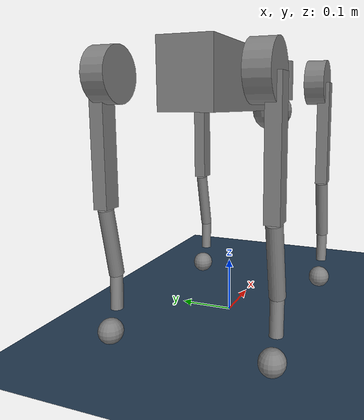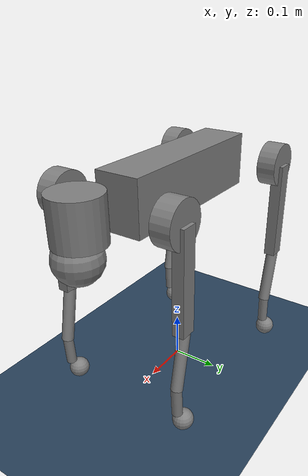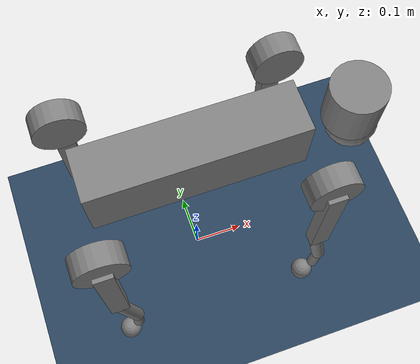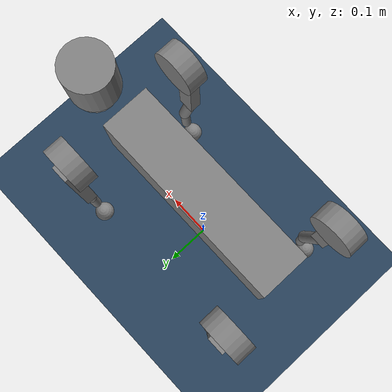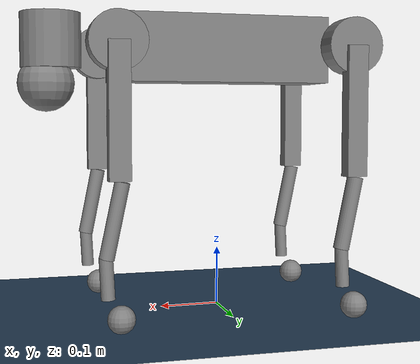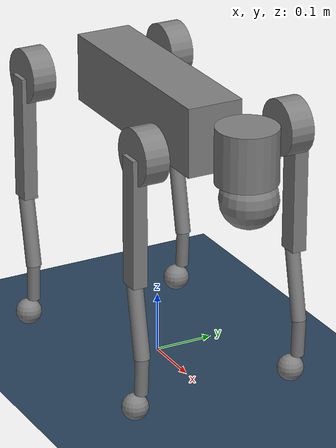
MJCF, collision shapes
<mujoco model="go2-mjx scene">
  <include file="go2_mjx_contact.xml"/>

  <statistic center="0 0 0.1" extent="0.8"/>

  <visual>
    <headlight diffuse="0.6 0.6 0.6" ambient="0.3 0.3 0.3" specular="0 0 0"/>
    <rgba haze="0.15 0.25 0.35 1"/>
    <global azimuth="120" elevation="-20"/>
  </visual>

  <asset>
    <texture type="skybox" builtin="gradient" rgb1="0.3 0.5 0.7" rgb2="0 0 0" width="512" height="3072"/>
    <texture type="2d" name="groundplane" builtin="checker" mark="edge" rgb1="0.2 0.3 0.4" rgb2="0.1 0.2 0.3"
      markrgb="0.8 0.8 0.8" width="300" height="300"/>
    <material name="groundplane" texture="groundplane" texuniform="true" texrepeat="5 5" reflectance="0.2"/>
  </asset>

  <worldbody>
    <light pos="0 0 1.5" dir="0 0 -1" directional="true"/>
    <camera name="default" pos="0.846 -1.465 0.916" xyaxes="0.866 0.500 0.000 -0.171 0.296 0.940"/>
    <geom name="floor" size="0 0 0.05" type="plane" material="groundplane"/>
  </worldbody>

  <keyframe>
    <key name="home" qpos="0 0 0.278 1 0 0 0 0.0 0.9 -1.8 0.0 0.9 -1.8 0.0 0.9 -1.8 0.0 0.9 -1.8"
      ctrl="0 0.9 -1.8 0 0.9 -1.8 0 0.9 -1.8 0 0.9 -1.8"/>
      <key name="crouch" qpos="-0.0384565 4.95902e-07 0.198396 0.998989 2.08821e-09 -0.0449472 -6.06184e-07 -0.0503107 0.956793 -2.15261 0.0503112 0.956793 -2.15261 -0.120289 0.915977 -2.27063 0.120289 0.915977 -2.27063"
      ctrl="-0.0503107 0.956793 -2.15261 0.0503112 0.956793 -2.15261 -0.120289 0.915977 -2.27063 0.120289 0.915977 -2.27063"/>
      <key name="prone_1" qpos="-0.0502458 3.66769e-06 0.0771103 0.998648 -1.29872e-06 -0.0519801 -1.94645e-05 -0.1339 1.22421 -2.7233 0.133924 1.22419 -2.72329 -0.481994 1.67458 -2.7239 0.48206 1.67406 -2.7239"
      ctrl="-0.13 1.2 -2.7 0.13 1.2 -2.7 -0.48 1.67 -2.7 0.48 1.67 -2.7"/>
      <key name="prone_2" qpos="-0.0369411 0.000157361 0.0765187 0.998689 -0.000882732 -0.0511797 0.000144047 -0.320642 1.17327 -2.61361 0.329096 1.1684 -2.61363 -0.483148 1.23678 -2.71366 0.493161 1.23329 -2.70996"
      ctrl="-0.352275 1.18554 -2.80738 0.360892 1.1806 -2.80281 -0.381197 1.16812 -2.79123 0.391054 1.1622 -2.78576"/>
      <key name="prone_3" qpos="0 0 0.12 0.999797 2.50649e-05 0.0201565 0.000500596 -0.0679284 1.03058 -2.67981 0.0687334 1.03041 -2.67934 -0.0129924 0.969629 -2.62512 0.012856 0.969593 -2.62509"
      ctrl="-0.0679284 1.03058 -2.67981 0.0687334 1.03041 -2.67934 -0.0129924 0.969629 -2.62512 0.012856 0.969593 -2.62509"/>
      <key name="tall_1" qpos="0 0 0.32 0.99996 1.51937e-08 0.00890876 -5.40594e-07 -0.0964217 0.671547 -1.57524 0.0964222 0.671547 -1.57524 -0.078734 0.939397 -1.50725 0.0787333 0.939397 -1.50725"
      ctrl="0.0 0.707 -1.4 0.0 0.707 -1.4 0.0 0.9 -1.4 0.0 0.9 -1.4"/>
      <key name="tall_2" qpos="0 0 0.31 1 0 0 0 0 0.82 -1.63 0 0.82 -1.63 0 0.82 -1.63 0 0.82 -1.63"
      ctrl="0 0.82 -1.63 0 0.82 -1.63 0 0.82 -1.63 0 0.82 -1.63"/>
  </keyframe>

</mujoco>

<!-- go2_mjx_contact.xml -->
<mujoco model="go2">
  <compiler angle="radian" meshdir="assets" autolimits="true"/>

  <option iterations="1" ls_iterations="5" timestep="0.004" integrator="Euler">
    <flag eulerdamp="disable"/>
  </option>

  <default>
    <default class="go2">
      <geom friction="0.6" contype="0" conaffinity="0" type="mesh"/>
      <joint axis="0 1 0" damping="0.5" armature="0.01"/>
      <position forcerange="-23.7 23.7" kp="35.0"/>
      <default class="go2/abduction">
        <joint axis="1 0 0" range="-1.0472 1.0472" frictionloss="0.35"/>
        <position ctrlrange="-1.0472 1.0472"/>
      </default>
      <default class="go2/hip">
        <default class="go2/front_hip">
          <joint range="-1.5708 3.4907" frictionloss="0.35"/>
          <position ctrlrange="-1.5708 3.4907"/>
        </default>
        <default class="go2/back_hip">
          <joint range="-0.5236 4.5379" frictionloss="0.35"/>
          <position ctrlrange="-0.5236 4.5379"/>
        </default>
      </default>
      <default class="go2/knee">
        <joint range="-2.7227 -0.83776" frictionloss="1.35"/>
        <position forcerange="-45.43 45.43" ctrlrange="-2.7227 -0.83776"/>
      </default>
      <default class="go2/foot">
        <site pos="-0.002 0 -0.213"/>
      </default>
      <default class="go2/collision">
        <geom group="3" contype="0" conaffinity="1"/>
        <default class="go2/collision/foot">
          <geom type="sphere" size="0.022" pos="-0.002 0 -0.213" solimp="0.9 .95 0.022" condim="6" friction="0.8 0.02 0.01"/>
        </default>
      </default>
    </default>
  </default>

  <asset>
    <material name="metal" rgba=".9 .95 .95 1"/>
    <material name="black" rgba="0 0 0 1"/>
    <material name="white" rgba="1 1 1 1"/>
    <material name="gray" rgba="0.671705 0.692426 0.774270 1"/>
    <mesh file="base_0.obj"/>
    <mesh file="base_1.obj"/>
    <mesh file="base_2.obj"/>
    <mesh file="base_3.obj"/>
    <mesh file="base_4.obj"/>
    <mesh file="hip_0.obj"/>
    <mesh file="hip_1.obj"/>
    <mesh file="thigh_0.obj"/>
    <mesh file="thigh_1.obj"/>
    <mesh file="thigh_mirror_0.obj"/>
    <mesh file="thigh_mirror_1.obj"/>
    <mesh file="calf_0.obj"/>
    <mesh file="calf_1.obj"/>
    <mesh file="calf_mirror_0.obj"/>
    <mesh file="calf_mirror_1.obj"/>
    <mesh file="foot.obj"/>
  </asset>

   <worldbody>
        <body name="base_link" pos="0 0 0.445" childclass="go2">
            <inertial pos="0.021112 0 -0.005366" quat="-0.000543471 0.713435 -0.00173769 0.700719"
                mass="6.921"
                diaginertia="0.107027 0.0980771 0.0244531"/>
            <freejoint/>
            <geom mesh="base_0" material="black" class="go2"/>
            <geom mesh="base_1" material="black" class="go2"/>
            <geom mesh="base_2" material="black" class="go2"/>
            <geom mesh="base_3" material="white" class="go2"/>
            <geom mesh="base_4" material="gray" class="go2"/>
            <!-- Collision: -->
            <geom size="0.1881 0.04675 0.057" type="box" class="go2/collision"/>
            <geom size="0.05 0.045" pos="0.285 0 0.01" type="cylinder" class="go2/collision"/>
            <geom size="0.047" pos="0.293 0 -0.06" type="sphere" class="go2/collision"/>
            <site name="imu" pos="-0.02557 0 0.04232"/>
            <body name="front_right_hip" pos="0.1934 -0.0465 0">
                <inertial pos="-0.0054 -0.00194 -0.000105" quat="0.498237 0.505462 0.499245 0.497014"
                  mass="0.678"
                  diaginertia="0.00088403 0.000596003 0.000479967"/>
                <joint name="front_right_hip_joint" class="go2/abduction"/>
                <geom mesh="hip_0" material="metal" class="go2" quat="4.63268e-05 1 0 0"/>
                <geom mesh="hip_1" material="gray" class="go2" quat="4.63268e-05 1 0 0"/>
                <!-- Collision: -->
                <geom size="0.046 0.02" pos="0 -0.08 0" quat="0.707107 0.707107 0 0" type="cylinder"
                  class="go2/collision"/>
                <body name="front_right_thigh" pos="0 -0.0955 0">
                    <inertial pos="-0.00374 0.0223 -0.0327" quat="0.551623 -0.0200632 0.0847635 0.829533"
                        mass="1.152"
                        diaginertia="0.00594973 0.00584149 0.000878787"/>
                    <joint name="front_right_thigh_joint" class="go2/front_hip"/>
                    <geom mesh="thigh_mirror_0" material="metal" class="go2"/>
                    <geom mesh="thigh_mirror_1" material="gray" class="go2"/>
                    <!-- Collision: -->
                    <geom size="0.1065 0.01225 0.017" pos="0 0 -0.1065" quat="0.707107 0 0.707107 0"
                      type="box" class="go2/collision"/>
                    <body name="front_right_calf" pos="0 0 -0.213">
                        <inertial pos="0.00629595 0.000622121 -0.141417"
                          quat="0.703508 -0.00450087 0.00154099 0.710672"
                          mass="0.241352" diaginertia="0.0014901 0.00146356 5.31397e-05"/>
                        <joint name="front_right_calf_joint" class="go2/knee"/>
                        <geom mesh="calf_mirror_0" material="gray" class="go2"/>
                        <geom mesh="calf_mirror_1" material="black" class="go2"/>
                        <!-- Collision: -->
                        <geom size="0.013 0.06" pos="0.01 0 -0.06" quat="0.995004 0 -0.0998334 0"
                          type="cylinder" class="go2/collision"/>
                        <geom size="0.011 0.0325" pos="0.02 0 -0.148" quat="0.999688 0 0.0249974 0"
                          type="cylinder" class="go2/collision"/>
                        <geom pos="0 0 -0.213" mesh="foot" class="go2" material="black"/>
                        <geom name="front_right" class="go2/collision/foot"/>
                        <site name="front_right_foot" class="go2/foot"/>
                    </body>
                </body>
            </body>
            <body name="front_left_hip" pos="0.1934 0.0465 0">
                <inertial pos="-0.0054 0.00194 -0.000105" quat="0.497014 0.499245 0.505462 0.498237"
                mass="0.678"
                diaginertia="0.00088403 0.000596003 0.000479967"/>
                <joint name="front_left_hip_joint" class="go2/abduction"/>
                <geom mesh="hip_0" material="metal" class="go2"/>
                <geom mesh="hip_1" material="gray" class="go2"/>
                <!-- Collision: -->
                <geom size="0.046 0.02" pos="0 0.08 0" quat="1 1 0 0" type="cylinder" class="go2/collision"/>
                <body name="front_left_thigh" pos="0 0.0955 0">
                    <inertial pos="-0.00374 -0.0223 -0.0327" quat="0.829533 0.0847635 -0.0200632 0.551623"
                        mass="1.152"
                        diaginertia="0.00594973 0.00584149 0.000878787"/>
                    <joint name="front_left_thigh_joint" class="go2/front_hip"/>
                    <geom mesh="thigh_0" material="metal" class="go2"/>
                    <geom mesh="thigh_1" material="gray" class="go2"/>
                    <!-- Collision: -->
                    <geom size="0.1065 0.01225 0.017" pos="0 0 -0.1065" quat="0.707107 0 0.707107 0"
                      type="box" class="go2/collision" />
                    <body name="front_left_calf" pos="0 0 -0.213">
                        <inertial pos="0.00629595 -0.000622121 -0.141417"
                          quat="0.710672 0.00154099 -0.00450087 0.703508"
                          mass="0.241352" diaginertia="0.0014901 0.00146356 5.31397e-05"/>
                        <joint name="front_left_calf_joint" class="go2/knee"/>
                        <geom mesh="calf_0" material="gray" class="go2"/>
                        <geom mesh="calf_1" material="black" class="go2"/>
                        <!-- Collision: -->
                        <geom size="0.012 0.06" pos="0.008 0 -0.06" quat="0.994493 0 -0.104807 0"
                          type="cylinder" class="go2/collision"/>
                        <geom size="0.011 0.0325" pos="0.02 0 -0.148" quat="0.999688 0 0.0249974 0"
                          type="cylinder" class="go2/collision"/>
                        <geom pos="0 0 -0.213" mesh="foot" class="go2" material="black"/>
                        <geom name="front_left" class="go2/collision/foot"/>
                        <site name="front_left_foot" class="go2/foot"/>
                    </body>
                </body>
            </body>
            <body name="hind_right_hip" pos="-0.1934 -0.0465 0">
                <inertial pos="0.0054 -0.00194 -0.000105" quat="0.499245 0.497014 0.498237 0.505462"
                mass="0.678"
                diaginertia="0.00088403 0.000596003 0.000479967"/>
                <joint name="hind_right_hip_joint" class="go2/abduction"/>
                <geom mesh="hip_0" material="metal" class="go2"
                quat="2.14617e-09 4.63268e-05 4.63268e-05 -1"/>
                <geom mesh="hip_1" material="gray" class="go2"
                    quat="2.14617e-09 4.63268e-05 4.63268e-05 -1"/>
                <!-- Collision: -->
                <geom size="0.046 0.02" pos="0 -0.08 0" quat="0.707107 0.707107 0 0" type="cylinder"
                  class="go2/collision"/>
                    <body name="hind_right_thigh" pos="0 -0.0955 0">
                    <inertial pos="-0.00374 0.0223 -0.0327" quat="0.551623 -0.0200632 0.0847635 0.829533"
                        mass="1.152"
                        diaginertia="0.00594973 0.00584149 0.000878787"/>
                    <joint name="hind_right_thigh_joint" class="go2/back_hip"/>
                    <geom mesh="thigh_mirror_0" material="metal" class="go2"/>
                    <geom mesh="thigh_mirror_1" material="gray" class="go2"/>
                    <!-- Collision: -->
                    <geom size="0.1065 0.01225 0.017" pos="0 0 -0.1065" quat="0.707107 0 0.707107 0"
                      type="box" class="go2/collision" />
                    <body name="hind_right_calf" pos="0 0 -0.213">
                        <inertial pos="0.00629595 0.000622121 -0.141417"
                        quat="0.703508 -0.00450087 0.00154099 0.710672"
                        mass="0.241352" diaginertia="0.0014901 0.00146356 5.31397e-05"/>
                        <joint name="hind_right_calf_joint" class="go2/knee"/>
                        <geom mesh="calf_mirror_0" material="gray" class="go2"/>
                        <geom mesh="calf_mirror_1" material="black" class="go2"/>
                        <!-- Collision: -->
                        <geom size="0.013 0.06" pos="0.01 0 -0.06" quat="0.995004 0 -0.0998334 0"
                          type="cylinder" class="go2/collision" />
                        <geom size="0.011 0.0325" pos="0.02 0 -0.148" quat="0.999688 0 0.0249974 0"
                          type="cylinder" class="go2/collision" />
                        <geom pos="0 0 -0.213" mesh="foot" class="go2" material="black"/>
                        <geom name="hind_right" class="go2/collision/foot"/>
                        <site name="hind_right_foot" class="go2/foot"/>
                    </body>
                </body>
            </body>
            <body name="hind_left_hip" pos="-0.1934 0.0465 0">
                <inertial pos="0.0054 0.00194 -0.000105" quat="0.505462 0.498237 0.497014 0.499245"
                mass="0.678"
                diaginertia="0.00088403 0.000596003 0.000479967"/>
                <joint name="hind_left_hip_joint" class="go2/abduction"/>
                <geom mesh="hip_0" material="metal" class="go2" quat="4.63268e-05 0 1 0"/>
                <geom mesh="hip_1" material="gray" class="go2" quat="4.63268e-05 0 1 0"/>
                <!-- Collision -->
                <geom size="0.046 0.02" pos="0 0.08 0" quat="0.707107 0.707107 0 0" type="cylinder"
                  class="go2/collision"/>
                <body name="hind_left_thigh" pos="0 0.0955 0">
                    <inertial pos="-0.00374 -0.0223 -0.0327" quat="0.829533 0.0847635 -0.0200632 0.551623"
                        mass="1.152"
                        diaginertia="0.00594973 0.00584149 0.000878787"/>
                    <joint name="hind_left_thigh_joint" class="go2/back_hip"/>
                    <geom mesh="thigh_0" material="metal" class="go2"/>
                    <geom mesh="thigh_1" material="gray" class="go2"/>
                    <!-- Collision: -->
                    <geom size="0.1065 0.01225 0.017" pos="0 0 -0.1065" quat="0.707107 0 0.707107 0"
                      type="box" class="go2/collision"/>
                    <body name="hind_left_calf" pos="0 0 -0.213">
                        <inertial pos="0.00629595 -0.000622121 -0.141417"
                        quat="0.710672 0.00154099 -0.00450087 0.703508"
                        mass="0.241352" diaginertia="0.0014901 0.00146356 5.31397e-05"/>
                        <joint name="hind_left_calf_joint" class="go2/knee"/>
                        <geom mesh="calf_0" material="gray" class="go2"/>
                        <geom mesh="calf_1" material="black" class="go2"/>
                        <!-- Collision: -->
                        <geom size="0.013 0.06" pos="0.01 0 -0.06" quat="0.995004 0 -0.0998334 0"
                          type="cylinder" class="go2/collision"/>
                        <geom size="0.011 0.0325" pos="0.02 0 -0.148" quat="0.999688 0 0.0249974 0"
                          type="cylinder" class="go2/collision"/>
                        <geom pos="0 0 -0.213" mesh="foot" class="go2" material="black"/>
                        <geom name="hind_left" class="go2/collision/foot"/>
                        <site name="hind_left_foot" class="go2/foot"/>
                    </body>
                </body>
            </body>
        </body>
    </worldbody>

  <actuator>
    <position class="go2/abduction" name="front_right_hip" joint="front_right_hip_joint"/>
    <position class="go2/hip" name="front_right_thigh" joint="front_right_thigh_joint"/>
    <position class="go2/knee" name="front_right_calf" joint="front_right_calf_joint"/>
    <position class="go2/abduction" name="front_left_hip" joint="front_left_hip_joint"/>
    <position class="go2/hip" name="front_left_thigh" joint="front_left_thigh_joint"/>
    <position class="go2/knee" name="front_left_calf" joint="front_left_calf_joint"/>
    <position class="go2/abduction" name="hind_right_hip" joint="hind_right_hip_joint"/>
    <position class="go2/hip" name="hind_right_thigh" joint="hind_right_thigh_joint"/>
    <position class="go2/knee" name="hind_right_calf" joint="hind_right_calf_joint"/>
    <position class="go2/abduction" name="hind_left_hip" joint="hind_left_hip_joint"/>
    <position class="go2/hip" name="hind_left_thigh" joint="hind_left_thigh_joint"/>
    <position class="go2/knee" name="hind_left_calf" joint="hind_left_calf_joint"/>
  </actuator>

  <sensor>
    <!-- IMU: -->
    <gyro name="imu_gyro" site="imu"/>
    <framequat name="imu_orientation" objtype="site" objname="imu"/>
    <accelerometer name="imu_acceleration" site="imu"/>

    <!-- State Estimator: -->
    <velocimeter name="local_linvel" site="imu"/>
    <framepos name="imu_position" objtype="site" objname="imu"/>
    <framelinvel name="fr_global_linvel" objtype="site" objname="front_right_foot"/>
    <framelinvel name="fl_global_linvel" objtype="site" objname="front_left_foot"/>
    <framelinvel name="hr_global_linvel" objtype="site" objname="hind_right_foot"/>
    <framelinvel name="hl_global_linvel" objtype="site" objname="hind_left_foot"/>
    <framepos name="fr_pos" objtype="site" objname="front_right_foot" reftype="site" refname="imu"/>
    <framepos name="fl_pos" objtype="site" objname="front_left_foot" reftype="site" refname="imu"/>
    <framepos name="hr_pos" objtype="site" objname="hind_right_foot" reftype="site" refname="imu"/>
    <framepos name="hl_pos" objtype="site" objname="hind_left_foot" reftype="site" refname="imu"/>

    <!-- Globals: -->
    <framezaxis name="upvector" objtype="site" objname="imu"/>
    <framexaxis name="forwardvector" objtype="site" objname="imu"/>
    <framelinvel name="global_linvel" objtype="site" objname="imu"/>
    <frameangvel name="global_angvel" objtype="site" objname="imu"/>
  </sensor>

</mujoco>
